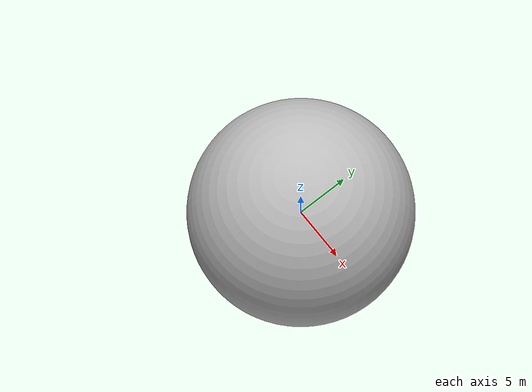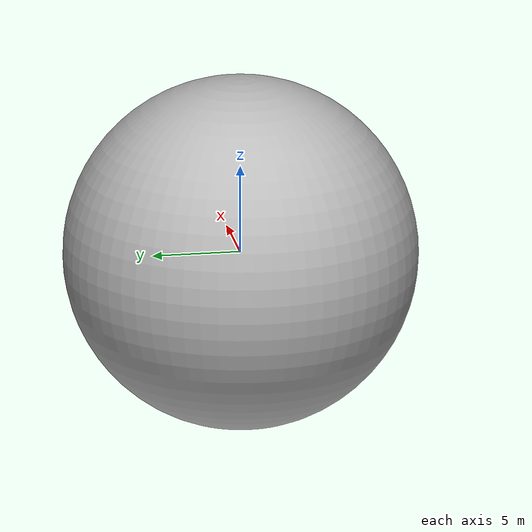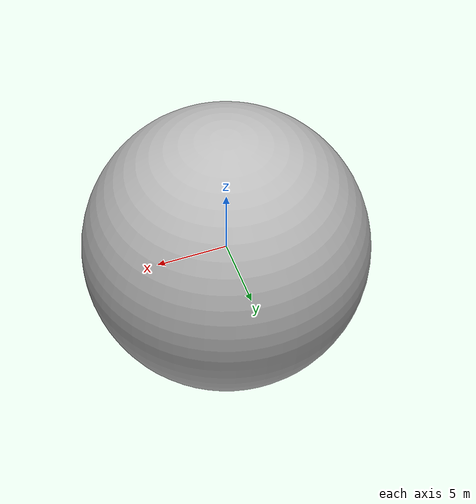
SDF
<?xml version="1.0" ?>
<sdf version="1.4">
  <!-- We use a custom world for the rrbot so that the camera angle is launched correctly -->

  <world name="default">
    <!-- Required gz-sim systems: without these, the world simulates physics
         but nothing steps/publishes sensor data (lidar, camera, IMU) and
         GUI-side entity spawning/deletion won't work. -->
    <plugin filename="gz-sim-physics-system" name="gz::sim::systems::Physics">
    </plugin>
    <plugin filename="gz-sim-user-commands-system" name="gz::sim::systems::UserCommands">
    </plugin>
    <plugin filename="gz-sim-scene-broadcaster-system" name="gz::sim::systems::SceneBroadcaster">
    </plugin>
    <plugin filename="gz-sim-sensors-system" name="gz::sim::systems::Sensors">
      <render_engine>ogre2</render_engine>
    </plugin>
    <plugin filename="gz-sim-imu-system" name="gz::sim::systems::Imu">
    </plugin>
     <scene>
      <ambient>0.8 0.8 0.8 1.0</ambient>
      <background>0.5 0.5 0.5</background>
      <grid>false</grid>
    </scene>

    <model name="ground_plane">
      <static>true</static>
      <link name="link">
        <collision name="collision">
          <geometry>
            <plane>
              <normal>0 0 1</normal>
              <size>100 100</size>
            </plane>
          </geometry>
        </collision>
      </link>
    </model>

    <include>
      <uri>model://limo_lab</uri>
    </include>

    <include>
      <uri>model://tortoise_bot</uri>
      <pose>0.26 1 0 0 0 -1.5707</pose>
    </include>

    <include>
      <uri>model://tortoise_bot2</uri>
      <pose>0 1 0 0 0 -1.5707</pose>
    </include>

    <include>
      <uri>model://background</uri>
      <pose>0 0 0 0 0 0.7</pose>
    </include>

    <light name='user_point_light_1' type='point'>
      <pose>0.0 0.0 2.0 0 0 0</pose>
      <diffuse>0.5 0.5 0.5 1</diffuse>
      <specular>0.1 0.1 0.1 1</specular>
      <attenuation>
        <range>100</range>
        <constant>0.05</constant>
        <linear>0.0</linear>
        <quadratic>0.001</quadratic>
      </attenuation>
      <cast_shadows>0</cast_shadows>
      <direction>0 0 -1</direction>
    </light>

  </world>
</sdf>

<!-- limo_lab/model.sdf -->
<sdf version='1.6'>
  <model name='limo_lab'>
    <link name='link_1'>
         <visual name='visual'>
        <pose frame=''>0 0 0 0 -0 0</pose>
        <geometry>
          <mesh>
            <uri>model://limo_lab/meshes/limo_lab.dae</uri>
            <scale>1 1 1</scale>
          </mesh>
        </geometry>
        <cast_shadows>1</cast_shadows>
        <transparency>0</transparency>
      </visual>
      <collision name='collision'>
        <laser_retro>0</laser_retro>
        <max_contacts>10</max_contacts>
        <pose frame=''>0 0 0 0 -0 0</pose>
        <geometry>
          <mesh>
            <uri>model://limo_lab/meshes/limo_lab.dae</uri>
            <scale>1 1 1</scale>
          </mesh>
        </geometry>
     </collision>
    </link>

    <static>1</static>
    <allow_auto_disable>1</allow_auto_disable>
  </model>
</sdf>

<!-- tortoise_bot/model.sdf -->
<sdf version='1.6'>
  <model name='tor_bot1'>
    <link name='link_1'>
         <visual name='visual'>
        <pose frame=''>0 0 0 0 -0 0</pose>
        <geometry>
          <mesh>
            <uri>model://tortoise_bot/meshes/tortoise_bot.dae</uri>
            <scale>1 1 1</scale>
          </mesh>
        </geometry>
        <cast_shadows>0</cast_shadows>
        <transparency>0</transparency>
      </visual>

      <collision name='collision'>
        <laser_retro>0</laser_retro>
        <max_contacts>10</max_contacts>
        <pose frame=''>0 0 0 0 -0 0</pose>
        <geometry>
          <mesh>
            <uri>model://tortoise_bot/meshes/tortoise_bot.stl</uri>
            <scale>1 1 1</scale>
          </mesh>
        </geometry>
     </collision>
    </link>

    <static>1</static>
    <allow_auto_disable>1</allow_auto_disable>
  </model>
</sdf>

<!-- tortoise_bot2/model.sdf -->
<sdf version='1.6'>
  <model name='tor_bot2'>
    <link name='link_1'>
         <visual name='visual'>
        <pose frame=''>0 0 0 0 -0 0</pose>
        <geometry>
          <mesh>
            <uri>model://tortoise_bot2/meshes/tortoise_bot.dae</uri>
            <scale>1 1 1</scale>
          </mesh>
        </geometry>
        <cast_shadows>0</cast_shadows>
        <transparency>0</transparency>
      </visual>

      <collision name='collision'>
        <laser_retro>0</laser_retro>
        <max_contacts>10</max_contacts>
        <pose frame=''>0 0 0 0 -0 0</pose>
        <geometry>
          <mesh>
            <uri>model://tortoise_bot2/meshes/tortoise_bot.stl</uri>
            <scale>1 1 1</scale>
          </mesh>
        </geometry>
     </collision>
    </link>

    <static>1</static>
    <allow_auto_disable>1</allow_auto_disable>
  </model>
</sdf>

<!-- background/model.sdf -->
<sdf version='1.6'>
  <model name='background'>
    <link name='link_1'>
         <visual name='visual'>
        <pose frame=''>0 0 0 0 -0 0</pose>
        <geometry>
          <mesh>
            <uri>model://background/meshes/sphere.dae</uri>
            <scale>0.02 0.02 0.02</scale>
          </mesh>
        </geometry>
        <cast_shadows>0</cast_shadows>
        <transparency>0</transparency>
      </visual>
    </link>

    <static>1</static>
    <allow_auto_disable>1</allow_auto_disable>
  </model>
</sdf>
